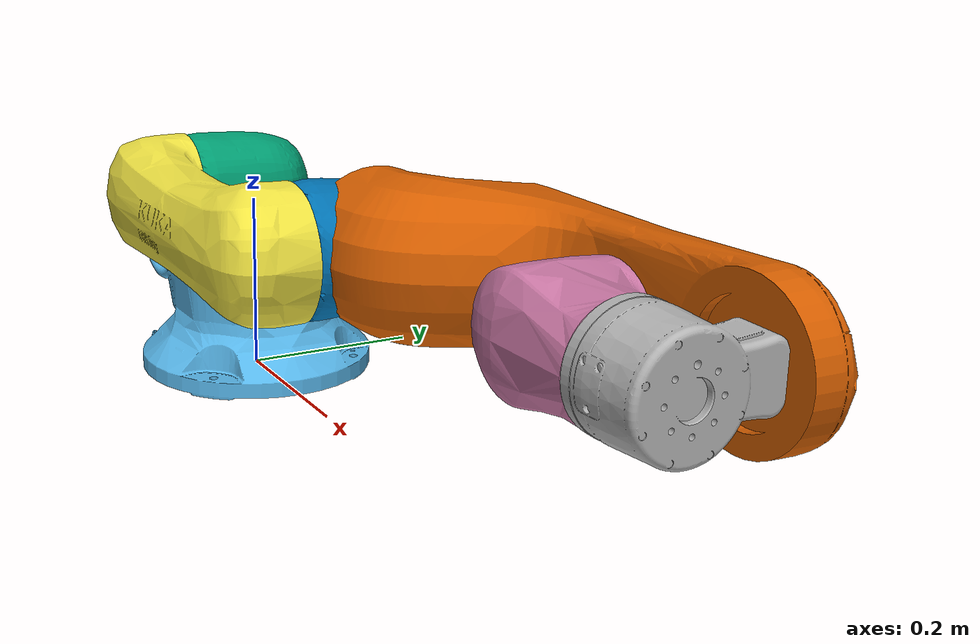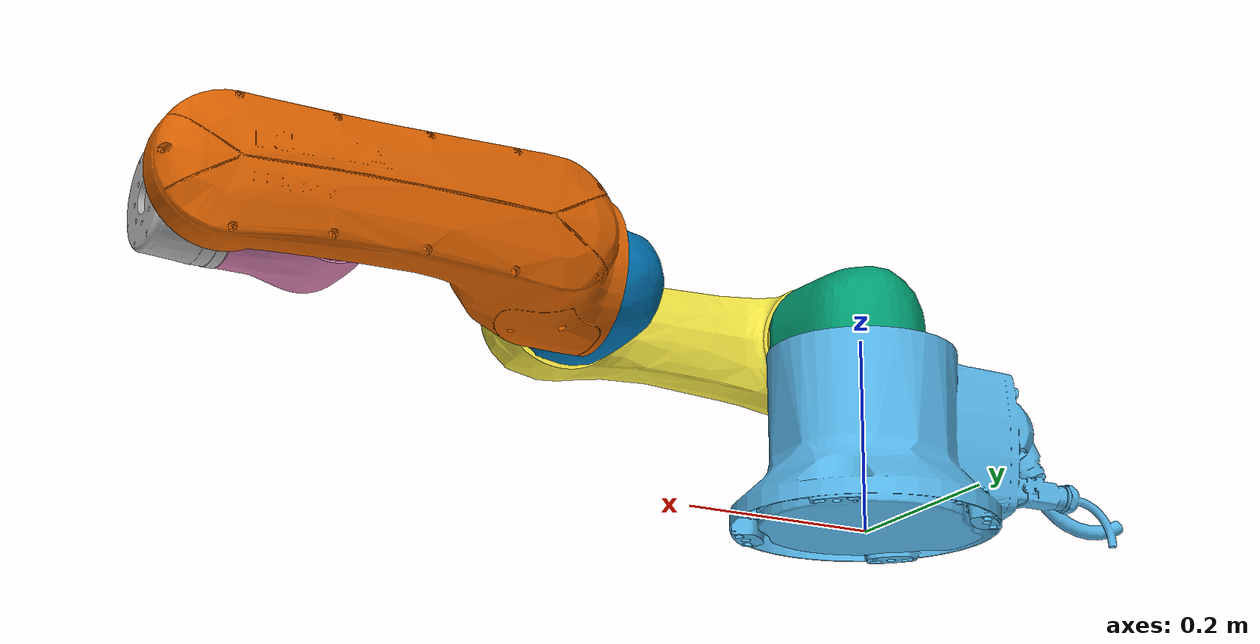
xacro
<?xml version="1.0"?>
<robot xmlns:xacro="http://www.ros.org/wiki/xacro" name="lbr_iisy3_r760">
  <!-- Import iisy macro files  -->
  <xacro:include filename="$(find kuka_lbr_iisy_support)/urdf/lbr_iisy3_r760_macro.xacro"/>
  <xacro:include filename="$(find kuka_lbr_iisy_support)/urdf/lbr_iisy_ros2_control_macro.xacro"/>
  <!-- Read additional arguments  -->
  <xacro:arg name="driver_version" default="rsi_only"/>
  <xacro:arg name="mode" default="hardware"/>
  <xacro:arg name="use_gpio" default="false"/>
  <xacro:arg name="roundtrip_time" default="0"/>
  <xacro:arg name="client_ip" default="0.0.0.0"/>
  <xacro:arg name="client_port" default="59152"/>
  <xacro:arg name="mxa_client_port" default="1336"/>
  <xacro:arg name="controller_ip" default="0.0.0.0"/>
  <xacro:arg name="verify_robot_model" default="true"/>
  <xacro:arg name="joint_stiffness" default="[]"/>
  <xacro:arg name="joint_damping" default="[]"/>
  <xacro:arg name="qos_config_file" default=""/>
  <xacro:arg name="prefix" default=""/>
  <xacro:arg name="is_async" default="false"/>
  <xacro:arg name="async_thread_priority" default="69"/>
  <xacro:arg name="async_affinity" default="[]"/>
  <xacro:arg name="x" default="0"/>
  <xacro:arg name="y" default="0"/>
  <xacro:arg name="z" default="0"/>
  <xacro:arg name="roll" default="0"/>
  <xacro:arg name="pitch" default="0"/>
  <xacro:arg name="yaw" default="0"/>
  <xacro:arg name="rsi_xml_config_file" default=""/>
  <xacro:kuka_lbr_iisy_ros2_control name="$(arg prefix)lbr_iisy3_r760" driver_version="$(arg driver_version)" client_ip="$(arg client_ip)" client_port="$(arg client_port)" mxa_client_port="$(arg mxa_client_port)" controller_ip="$(arg controller_ip)" prefix="$(arg prefix)" mode="$(arg mode)" use_gpio="$(arg use_gpio)" roundtrip_time="$(arg roundtrip_time)" verify_robot_model="$(arg verify_robot_model)" qos_config_file="$(arg qos_config_file)" rsi_xml_config_file="$(arg rsi_xml_config_file)" is_async="$(arg is_async)" async_thread_priority="$(arg async_thread_priority)" async_affinity="$(arg async_affinity)" joint_stiffness="$(arg joint_stiffness)" joint_damping="$(arg joint_damping)">
    <ext_axes_ros2_control_joints/>
  </xacro:kuka_lbr_iisy_ros2_control>
  <!-- world link -->
  <link name="world"/>
  <!-- robot links, joints -->
  <xacro:kuka_lbr_iisy3_r760_robot prefix="$(arg prefix)" package_name="kuka_lbr_iisy_support"/>
  <!-- default world - base_link joint -->
  <joint name="$(arg prefix)world-base_link" type="fixed">
    <parent link="world"/>
    <child link="$(arg prefix)base_link"/>
    <origin xyz="$(arg x) $(arg y) $(arg z)" rpy="$(arg roll) $(arg pitch) $(arg yaw)"/>
  </joint>
</robot>

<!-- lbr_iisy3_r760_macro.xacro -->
<robot xmlns:xacro="http://www.ros.org/wiki/xacro" name="lbr_iisy3_r760">
  <!-- include helper xacros -->
  <xacro:include filename="$(find kuka_resources)/urdf/common_materials.xacro"/>
  <xacro:macro name="kuka_lbr_iisy3_r760_robot" params="prefix package_name">
    <!-- links - main serial chain -->
    <link name="${prefix}base_link">
      <collision>
        <geometry>
          <mesh filename="package://${package_name}/meshes/lbr_iisy3_r760/collision/base_link.stl"/>
        </geometry>
        <origin rpy="-0.0 0.0 -0.0" xyz="0.0 0.0 0.0"/>
      </collision>
      <inertial>
        <inertia ixx="0.012748224322771616" ixy="0.0" ixz="0.0" iyy="0.010816256892101183" iyz="0.0" izz="0.014034253414070816"/>
        <mass value="3.6832E0"/>
        <origin rpy="-1.635646718734919 -1.5587113211406542 -3.076430534295977" xyz="-0.010469427580225498 2.2191996713941945E-18 0.06527114050303555"/>
      </inertial>
      <visual>
        <geometry>
          <mesh filename="package://${package_name}/meshes/lbr_iisy3_r760/visual/base_link.stl"/>
        </geometry>
        <origin rpy="-0.0 0.0 -0.0" xyz="0.0 0.0 0.0"/>
        <xacro:material_kuka_ral_pure_white/>
      </visual>
    </link>
    <link name="${prefix}link_1">
      <collision>
        <geometry>
          <mesh filename="package://${package_name}/meshes/lbr_iisy3_r760/collision/link_1.stl"/>
        </geometry>
        <origin rpy="-0.0 0.0 -0.0" xyz="0.0 0.0 0.0"/>
      </collision>
      <inertial>
        <inertia ixx="0.00864540353780418" ixy="0.0" ixz="0.0" iyy="0.00573103463618732" iyz="0.0" izz="0.00974792600424334"/>
        <mass value="3.2492E0"/>
        <origin rpy="-1.5252872042613295 -0.9405332807925293 1.5213371149412753" xyz="-1.91677951495753E-4 0.024070491197833298 -0.0710631416964176"/>
      </inertial>
      <visual>
        <geometry>
          <mesh filename="package://${package_name}/meshes/lbr_iisy3_r760/visual/link_1.stl"/>
        </geometry>
        <origin rpy="-0.0 0.0 -0.0" xyz="0.0 0.0 0.0"/>
        <xacro:material_kuka_ral_pure_white/>
      </visual>
    </link>
    <link name="${prefix}link_2">
      <collision>
        <geometry>
          <mesh filename="package://${package_name}/meshes/lbr_iisy3_r760/collision/link_2.stl"/>
        </geometry>
        <origin rpy="-0.0 0.0 -0.0" xyz="0.0 0.0 0.0"/>
      </collision>
      <inertial>
        <inertia ixx="0.0521692170047944" ixy="0.0" ixz="0.0" iyy="0.0042331111850977" iyz="0.0" izz="0.0534425693052013"/>
        <mass value="3.212E0"/>
        <origin rpy="9.692351535578106E-5 0.0015557646011294692 -1.5702311120941035" xyz="0.151061643835616 -6.75591531755915E-4 -0.034993673723536706"/>
      </inertial>
      <visual>
        <geometry>
          <mesh filename="package://${package_name}/meshes/lbr_iisy3_r760/visual/link_2.stl"/>
        </geometry>
        <origin rpy="-0.0 0.0 -0.0" xyz="0.0 0.0 0.0"/>
        <xacro:material_kuka_ral_pure_white/>
      </visual>
    </link>
    <link name="${prefix}link_3">
      <collision>
        <geometry>
          <mesh filename="package://${package_name}/meshes/lbr_iisy3_r760/collision/link_3.stl"/>
        </geometry>
        <origin rpy="-0.0 0.0 -0.0" xyz="0.0 0.0 0.0"/>
      </collision>
      <inertial>
        <inertia ixx="0.0113804888378926" ixy="0.0" ixz="0.0" iyy="0.00566536942404497" iyz="0.0" izz="0.0133950588482047"/>
        <mass value="3.471E0"/>
        <origin rpy="1.5993955084701255 -1.1491769762279627 3.1012276608488882" xyz="0.029424678766926 2.54105445116681E-4 0.058670936329588"/>
      </inertial>
      <visual>
        <geometry>
          <mesh filename="package://${package_name}/meshes/lbr_iisy3_r760/visual/link_3.stl"/>
        </geometry>
        <origin rpy="-0.0 0.0 -0.0" xyz="0.0 0.0 0.0"/>
        <xacro:material_kuka_ral_pure_white/>
      </visual>
    </link>
    <link name="${prefix}link_4">
      <collision>
        <geometry>
          <mesh filename="package://${package_name}/meshes/lbr_iisy3_r760/collision/link_4.stl"/>
        </geometry>
        <origin rpy="-0.0 0.0 -0.0" xyz="0.0 0.0 0.0"/>
      </collision>
      <inertial>
        <inertia ixx="0.00244684891934666" ixy="0.0" ixz="0.0" iyy="0.00929300990970133" iyz="0.0" izz="0.00957902612033654"/>
        <mass value="2.0138E0"/>
        <origin rpy="1.6613960972986936 -1.1557380835519457 -1.5702834955545293" xyz="1.05670870990168E-4 0.038203987486344196 -0.0813488578806237"/>
      </inertial>
      <visual>
        <geometry>
          <mesh filename="package://${package_name}/meshes/lbr_iisy3_r760/visual/link_4.stl"/>
        </geometry>
        <origin rpy="-0.0 0.0 -0.0" xyz="0.0 0.0 0.0"/>
        <xacro:material_kuka_ral_pure_white/>
      </visual>
    </link>
    <link name="${prefix}link_5">
      <collision>
        <geometry>
          <mesh filename="package://${package_name}/meshes/lbr_iisy3_r760/collision/link_5.stl"/>
        </geometry>
        <origin rpy="-0.0 0.0 -0.0" xyz="0.0 0.0 0.0"/>
      </collision>
      <inertial>
        <inertia ixx="0.00236252846105637" ixy="0.0" ixz="0.0" iyy="0.00141854396142661" iyz="0.0" izz="0.0025813096143987"/>
        <mass value="1.4418E0"/>
        <origin rpy="-1.7233052822660835 -1.3466087566012612 0.1844343658550185" xyz="0.0223951033430434 -2.98134988556471E-21 -0.0316419475655431"/>
      </inertial>
      <visual>
        <geometry>
          <mesh filename="package://${package_name}/meshes/lbr_iisy3_r760/visual/link_5.stl"/>
        </geometry>
        <origin rpy="-0.0 0.0 -0.0" xyz="0.0 0.0 0.0"/>
        <xacro:material_kuka_ral_pure_white/>
      </visual>
    </link>
    <link name="${prefix}link_6">
      <collision>
        <geometry>
          <mesh filename="package://${package_name}/meshes/lbr_iisy3_r760/collision/link_6.stl"/>
        </geometry>
        <origin rpy="-0.0 0.0 -0.0" xyz="0.0 0.0 0.0"/>
      </collision>
      <inertial>
        <inertia ixx="0.00130428196885741" ixy="0.0" ixz="0.0" iyy="8.59824496082689E-4" iyz="0.0" izz="0.00133168575299756"/>
        <mass value="7.25E-1"/>
        <origin rpy="-0.5546496285205927 -0.9838872221389914 0.47057095417629574" xyz="-8.78896551724138E-4 0.0100584827586207 -0.0396903310344828"/>
      </inertial>
      <visual>
        <geometry>
          <mesh filename="package://${package_name}/meshes/lbr_iisy3_r760/visual/link_6.stl"/>
        </geometry>
        <origin rpy="-0.0 0.0 -0.0" xyz="0.0 0.0 0.0"/>
        <xacro:material_kuka_ral_pure_white/>
      </visual>
    </link>
    <!-- joints - main serial chain -->
    <joint name="${prefix}joint_1" type="revolute">
      <axis xyz="0.0 0.0 -1.0"/>
      <child link="${prefix}link_1"/>
      <limit effort="74.930405" lower="-3.2288591E0" upper="3.2288591E0" velocity="3.490656"/>
      <origin rpy="-0.0 0.0 -0.0" xyz="0.0 0.0 0.1264"/>
      <parent link="${prefix}base_link"/>
    </joint>
    <joint name="${prefix}joint_2" type="revolute">
      <axis xyz="0.0 0.0 1.0"/>
      <child link="${prefix}link_2"/>
      <limit effort="74.472453" lower="-4.0142572796E0" upper="8.726646E-1" velocity="3.490656"/>
      <origin rpy="${-pi/2.0} 0.0 -0.0" xyz="0.0 0.0 0.0886"/>
      <parent link="${prefix}link_1"/>
    </joint>
    <joint name="${prefix}joint_3" type="revolute">
      <axis xyz="0.0 0.0 1.0"/>
      <child link="${prefix}link_3"/>
      <limit effort="43.393430" lower="-2.61799387799E0" upper="2.61799387799E0" velocity="3.490656"/>
      <origin rpy="0.0 0.0 ${-pi/2.0}" xyz="0.3 0.0 0.0"/>
      <parent link="${prefix}link_2"/>
    </joint>
    <joint name="${prefix}joint_4" type="revolute">
      <axis xyz="0.0 0.0 1.0"/>
      <child link="${prefix}link_4"/>
      <limit effort="14.767719" lower="-3.05432619E0" upper="3.05432619E0" velocity="5.235988"/>
      <origin rpy="${pi/2.0} 0.0 -0.0" xyz="0.0 0.0 0.0"/>
      <parent link="${prefix}link_3"/>
    </joint>
    <joint name="${prefix}joint_5" type="revolute">
      <axis xyz="0.0 0.0 1.0"/>
      <child link="${prefix}link_5"/>
      <limit effort="13.187655" lower="-1.919862177E0" upper="1.919862177E0" velocity="5.235988"/>
      <origin rpy="${-pi/2.0} 0.0 -0.0" xyz="0.0 0.0 -0.3"/>
      <parent link="${prefix}link_4"/>
    </joint>
    <joint name="${prefix}joint_6" type="revolute">
      <axis xyz="0.0 0.0 1.0"/>
      <child link="${prefix}link_6"/>
      <limit effort="4.834440" lower="-3.839724354E0" upper="3.839724354E0" velocity="6.981310"/>
      <origin rpy="${pi/2.0} 0.0 -0.0" xyz="0.0 0.0 0.0"/>
      <parent link="${prefix}link_5"/>
    </joint>
    <!-- ROS-Industrial 'base' frame - equivalent of 'KUKA ROBROOT'-->
    <link name="${prefix}base"/>
    <joint name="${prefix}base_link-base" type="fixed">
      <origin xyz="0 0 0" rpy="0 0 0"/>
      <parent link="${prefix}base_link"/>
      <child link="${prefix}base"/>
    </joint>
    <!-- ROS-Industrial 'flange' frame - attachment point for EEF models -->
    <link name="${prefix}flange"/>
    <joint name="${prefix}link6-flange" type="fixed">
      <child link="${prefix}flange"/>
      <origin rpy="0 ${pi/2} -0.0" xyz="0.0 0.0 -0.1605"/>
      <parent link="${prefix}link_6"/>
    </joint>
    <!-- ROS-Industrial 'tool0' frame - all-zeros tool frame -->
    <link name="${prefix}tool0"/>
    <joint name="${prefix}link6-tool0" type="fixed">
      <child link="${prefix}tool0"/>
      <origin rpy="0 ${pi} -0.0" xyz="0.0 0.0 -0.1605"/>
      <parent link="${prefix}link_6"/>
    </joint>
  </xacro:macro>
</robot>
